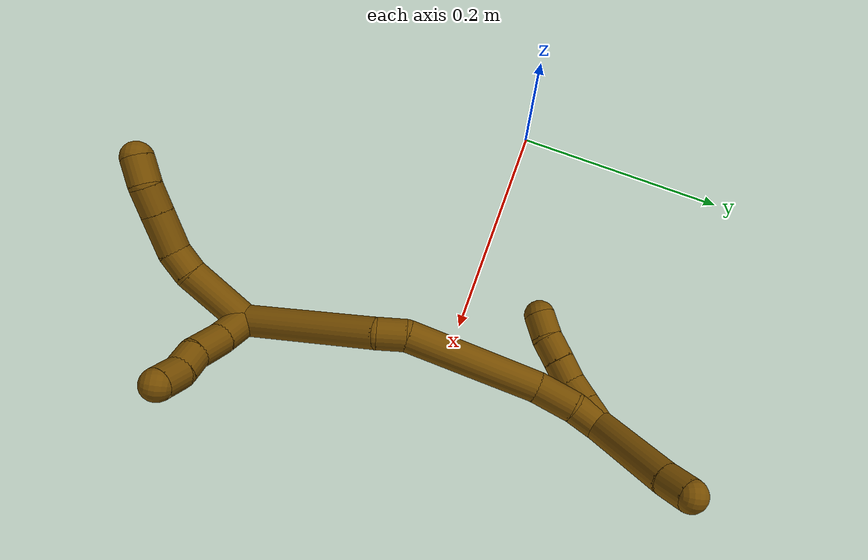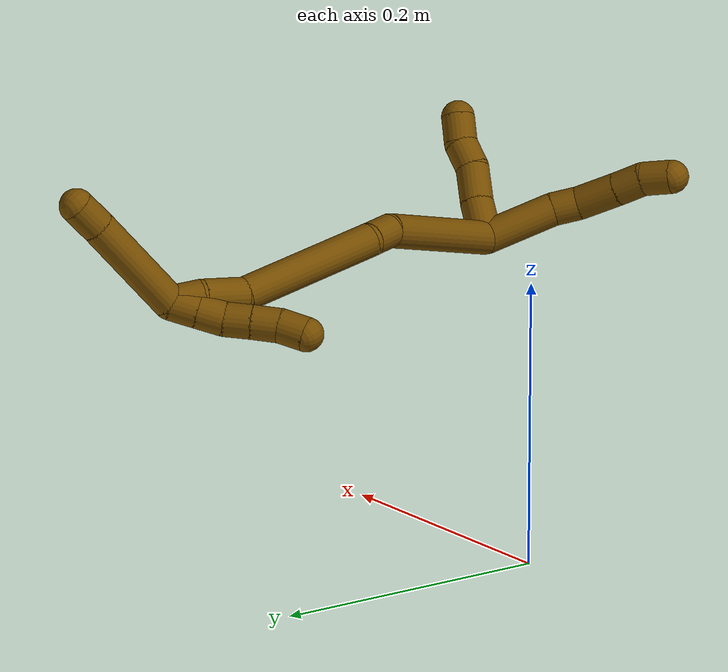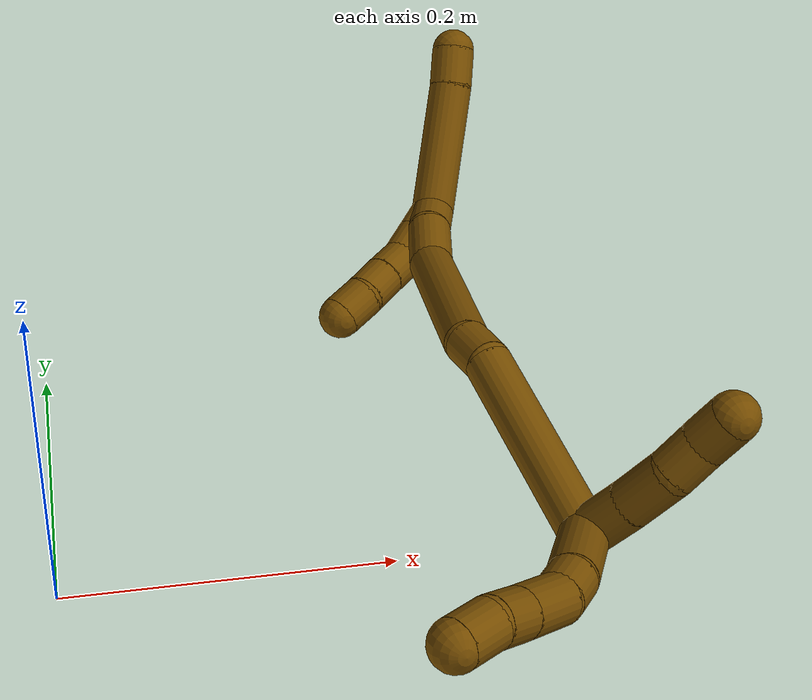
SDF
<sdf version="1.7">
 <world name="default">
  <model name="12">
   <static>0</static>
   <link name="12">
    <collision name="collision-cylinder-e_1_2_8">
     <pose>-0.013177 0.006614 0.022867 -0.281538 -0.505556 0.073174</pose>
     <geometry><cylinder><radius>0.0125</radius><length>0.054416</length></cylinder></geometry>
     <surface>
      <friction><ode><mu>1.16</mu><mu2>1.16</mu2><slip1>0</slip1><slip2>0</slip2></ode></friction>
      <contact><ode><kp>1e+06</kp><kd>1</kd><max_vel>0</max_vel><min_depth>0.001</min_depth></ode></contact>
     </surface>
    </collision>
    <visual name="visual-cylinder-e_1_2_8">
     <pose>-0.013177 0.006614 0.022867 -0.281538 -0.505556 0.073174</pose>
     <geometry><cylinder><radius>0.0125</radius><length>0.054416</length></cylinder></geometry>
     <material><ambient>0.466667 0.301961 0 1</ambient></material>
    </visual>
    <collision name="collision-cylinder-e_2_8_9">
     <pose>-0.03306 0.01535 0.052875 -0.288919 -0.732949 0.111553</pose>
     <geometry><cylinder><radius>0.0125</radius><length>0.020046</length></cylinder></geometry>
     <surface>
      <friction><ode><mu>1.16</mu><mu2>1.16</mu2><slip1>0</slip1><slip2>0</slip2></ode></friction>
      <contact><ode><kp>1e+06</kp><kd>1</kd><max_vel>0</max_vel><min_depth>0.001</min_depth></ode></contact>
     </surface>
    </collision>
    <visual name="visual-cylinder-e_2_8_9">
     <pose>-0.03306 0.01535 0.052875 -0.288919 -0.732949 0.111553</pose>
     <geometry><cylinder><radius>0.0125</radius><length>0.020046</length></cylinder></geometry>
     <material><ambient>0.466667 0.301961 0 1</ambient></material>
    </visual>
    <collision name="collision-cylinder-e_3_9_10">
     <pose>-0.051246 0.024985 0.068278 -0.737966 -0.799222 0.32377</pose>
     <geometry><cylinder><radius>0.0125</radius><length>0.032031</length></cylinder></geometry>
     <surface>
      <friction><ode><mu>1.16</mu><mu2>1.16</mu2><slip1>0</slip1><slip2>0</slip2></ode></friction>
      <contact><ode><kp>1e+06</kp><kd>1</kd><max_vel>0</max_vel><min_depth>0.001</min_depth></ode></contact>
     </surface>
    </collision>
    <visual name="visual-cylinder-e_3_9_10">
     <pose>-0.051246 0.024985 0.068278 -0.737966 -0.799222 0.32377</pose>
     <geometry><cylinder><radius>0.0125</radius><length>0.032031</length></cylinder></geometry>
     <material><ambient>0.466667 0.301961 0 1</ambient></material>
    </visual>
    <collision name="collision-cylinder-e_4_10_11">
     <pose>-0.07028 0.03781 0.082014 -0.770266 -0.780524 0.330472</pose>
     <geometry><cylinder><radius>0.0125</radius><length>0.021471</length></cylinder></geometry>
     <surface>
      <friction><ode><mu>1.16</mu><mu2>1.16</mu2><slip1>0</slip1><slip2>0</slip2></ode></friction>
      <contact><ode><kp>1e+06</kp><kd>1</kd><max_vel>0</max_vel><min_depth>0.001</min_depth></ode></contact>
     </surface>
    </collision>
    <visual name="visual-cylinder-e_4_10_11">
     <pose>-0.07028 0.03781 0.082014 -0.770266 -0.780524 0.330472</pose>
     <geometry><cylinder><radius>0.0125</radius><length>0.021471</length></cylinder></geometry>
     <material><ambient>0.466667 0.301961 0 1</ambient></material>
    </visual>
    <collision name="collision-cylinder-e_5_11_6">
     <pose>-0.087324 0.046055 0.092257 -0.551653 -1.03786 0.320539</pose>
     <geometry><cylinder><radius>0.0125</radius><length>0.022035</length></cylinder></geometry>
     <surface>
      <friction><ode><mu>1.16</mu><mu2>1.16</mu2><slip1>0</slip1><slip2>0</slip2></ode></friction>
      <contact><ode><kp>1e+06</kp><kd>1</kd><max_vel>0</max_vel><min_depth>0.001</min_depth></ode></contact>
     </surface>
    </collision>
    <visual name="visual-cylinder-e_5_11_6">
     <pose>-0.087324 0.046055 0.092257 -0.551653 -1.03786 0.320539</pose>
     <geometry><cylinder><radius>0.0125</radius><length>0.022035</length></cylinder></geometry>
     <material><ambient>0.466667 0.301961 0 1</ambient></material>
    </visual>
    <collision name="collision-cylinder-e_1_2_12">
     <pose>0.010696 0.006304 0.007695 -0.686321 0.821641 -0.308804</pose>
     <geometry><cylinder><radius>0.0125</radius><length>0.029214</length></cylinder></geometry>
     <surface>
      <friction><ode><mu>1.16</mu><mu2>1.16</mu2><slip1>0</slip1><slip2>0</slip2></ode></friction>
      <contact><ode><kp>1e+06</kp><kd>1</kd><max_vel>0</max_vel><min_depth>0.001</min_depth></ode></contact>
     </surface>
    </collision>
    <visual name="visual-cylinder-e_1_2_12">
     <pose>0.010696 0.006304 0.007695 -0.686321 0.821641 -0.308804</pose>
     <geometry><cylinder><radius>0.0125</radius><length>0.029214</length></cylinder></geometry>
     <material><ambient>0.466667 0.301961 0 1</ambient></material>
    </visual>
    <collision name="collision-cylinder-e_2_12_13">
     <pose>0.03063 0.019871 0.023521 -0.729146 0.702921 -0.278072</pose>
     <geometry><cylinder><radius>0.0125</radius><length>0.028579</length></cylinder></geometry>
     <surface>
      <friction><ode><mu>1.16</mu><mu2>1.16</mu2><slip1>0</slip1><slip2>0</slip2></ode></friction>
      <contact><ode><kp>1e+06</kp><kd>1</kd><max_vel>0</max_vel><min_depth>0.001</min_depth></ode></contact>
     </surface>
    </collision>
    <visual name="visual-cylinder-e_2_12_13">
     <pose>0.03063 0.019871 0.023521 -0.729146 0.702921 -0.278072</pose>
     <geometry><cylinder><radius>0.0125</radius><length>0.028579</length></cylinder></geometry>
     <material><ambient>0.466667 0.301961 0 1</ambient></material>
    </visual>
    <collision name="collision-cylinder-e_3_13_14">
     <pose>0.048318 0.032122 0.035027 -0.975801 0.951646 -0.533893</pose>
     <geometry><cylinder><radius>0.0125</radius><length>0.020754</length></cylinder></geometry>
     <surface>
      <friction><ode><mu>1.16</mu><mu2>1.16</mu2><slip1>0</slip1><slip2>0</slip2></ode></friction>
      <contact><ode><kp>1e+06</kp><kd>1</kd><max_vel>0</max_vel><min_depth>0.001</min_depth></ode></contact>
     </surface>
    </collision>
    <visual name="visual-cylinder-e_3_13_14">
     <pose>0.048318 0.032122 0.035027 -0.975801 0.951646 -0.533893</pose>
     <geometry><cylinder><radius>0.0125</radius><length>0.020754</length></cylinder></geometry>
     <material><ambient>0.466667 0.301961 0 1</ambient></material>
    </visual>
    <collision name="collision-cylinder-e_4_14_5">
     <pose>0.063317 0.043188 0.044337 -0.797403 0.656732 -0.285102</pose>
     <geometry><cylinder><radius>0.0125</radius><length>0.021453</length></cylinder></geometry>
     <surface>
      <friction><ode><mu>1.16</mu><mu2>1.16</mu2><slip1>0</slip1><slip2>0</slip2></ode></friction>
      <contact><ode><kp>1e+06</kp><kd>1</kd><max_vel>0</max_vel><min_depth>0.001</min_depth></ode></contact>
     </surface>
    </collision>
    <visual name="visual-cylinder-e_4_14_5">
     <pose>0.063317 0.043188 0.044337 -0.797403 0.656732 -0.285102</pose>
     <geometry><cylinder><radius>0.0125</radius><length>0.021453</length></cylinder></geometry>
     <material><ambient>0.466667 0.301961 0 1</ambient></material>
    </visual>
    <collision name="collision-cylinder-e_1_2_15">
     <pose>0.006009 0.027851 -0.047508 -2.61136 0.108691 -0.395481</pose>
     <geometry><cylinder><radius>0.0125</radius><length>0.110793</length></cylinder></geometry>
     <surface>
      <friction><ode><mu>1.16</mu><mu2>1.16</mu2><slip1>0</slip1><slip2>0</slip2></ode></friction>
      <contact><ode><kp>1e+06</kp><kd>1</kd><max_vel>0</max_vel><min_depth>0.001</min_depth></ode></contact>
     </surface>
    </collision>
    <visual name="visual-cylinder-e_1_2_15">
     <pose>0.006009 0.027851 -0.047508 -2.61136 0.108691 -0.395481</pose>
     <geometry><cylinder><radius>0.0125</radius><length>0.110793</length></cylinder></geometry>
     <material><ambient>0.466667 0.301961 0 1</ambient></material>
    </visual>
    <collision name="collision-cylinder-e_2_15_16">
     <pose>0.011782 0.05815 -0.106095 -2.92407 -0.020833 0.190224</pose>
     <geometry><cylinder><radius>0.0125</radius><length>0.022697</length></cylinder></geometry>
     <surface>
      <friction><ode><mu>1.16</mu><mu2>1.16</mu2><slip1>0</slip1><slip2>0</slip2></ode></friction>
      <contact><ode><kp>1e+06</kp><kd>1</kd><max_vel>0</max_vel><min_depth>0.001</min_depth></ode></contact>
     </surface>
    </collision>
    <visual name="visual-cylinder-e_2_15_16">
     <pose>0.011782 0.05815 -0.106095 -2.92407 -0.020833 0.190224</pose>
     <geometry><cylinder><radius>0.0125</radius><length>0.022697</length></cylinder></geometry>
     <material><ambient>0.466667 0.301961 0 1</ambient></material>
    </visual>
    <collision name="collision-cylinder-e_3_16_17">
     <pose>0.024218 0.060873 -0.170737 -3.13647 0.23231 -3.09773</pose>
     <geometry><cylinder><radius>0.0125</radius><length>0.110086</length></cylinder></geometry>
     <surface>
      <friction><ode><mu>1.16</mu><mu2>1.16</mu2><slip1>0</slip1><slip2>0</slip2></ode></friction>
      <contact><ode><kp>1e+06</kp><kd>1</kd><max_vel>0</max_vel><min_depth>0.001</min_depth></ode></contact>
     </surface>
    </collision>
    <visual name="visual-cylinder-e_3_16_17">
     <pose>0.024218 0.060873 -0.170737 -3.13647 0.23231 -3.09773</pose>
     <geometry><cylinder><radius>0.0125</radius><length>0.110086</length></cylinder></geometry>
     <material><ambient>0.466667 0.301961 0 1</ambient></material>
    </visual>
    <collision name="collision-cylinder-e_4_17_18">
     <pose>0.043955 0.065078 -0.238639 -2.874 0.443584 -2.06534</pose>
     <geometry><cylinder><radius>0.0125</radius><length>0.032921</length></cylinder></geometry>
     <surface>
      <friction><ode><mu>1.16</mu><mu2>1.16</mu2><slip1>0</slip1><slip2>0</slip2></ode></friction>
      <contact><ode><kp>1e+06</kp><kd>1</kd><max_vel>0</max_vel><min_depth>0.001</min_depth></ode></contact>
     </surface>
    </collision>
    <visual name="visual-cylinder-e_4_17_18">
     <pose>0.043955 0.065078 -0.238639 -2.874 0.443584 -2.06534</pose>
     <geometry><cylinder><radius>0.0125</radius><length>0.032921</length></cylinder></geometry>
     <material><ambient>0.466667 0.301961 0 1</ambient></material>
    </visual>
    <collision name="collision-cylinder-e_5_18_1">
     <pose>0.056739 0.0693 -0.263238 -3.11322 0.50832 -3.03248</pose>
     <geometry><cylinder><radius>0.0125</radius><length>0.023503</length></cylinder></geometry>
     <surface>
      <friction><ode><mu>1.16</mu><mu2>1.16</mu2><slip1>0</slip1><slip2>0</slip2></ode></friction>
      <contact><ode><kp>1e+06</kp><kd>1</kd><max_vel>0</max_vel><min_depth>0.001</min_depth></ode></contact>
     </surface>
    </collision>
    <visual name="visual-cylinder-e_5_18_1">
     <pose>0.056739 0.0693 -0.263238 -3.11322 0.50832 -3.03248</pose>
     <geometry><cylinder><radius>0.0125</radius><length>0.023503</length></cylinder></geometry>
     <material><ambient>0.466667 0.301961 0 1</ambient></material>
    </visual>
    <collision name="collision-cylinder-e_1_1_19">
     <pose>0.0852 0.098587 -0.285075 -1.95061 0.629543 -0.895951</pose>
     <geometry><cylinder><radius>0.0125</radius><length>0.077251</length></cylinder></geometry>
     <surface>
      <friction><ode><mu>1.16</mu><mu2>1.16</mu2><slip1>0</slip1><slip2>0</slip2></ode></friction>
      <contact><ode><kp>1e+06</kp><kd>1</kd><max_vel>0</max_vel><min_depth>0.001</min_depth></ode></contact>
     </surface>
    </collision>
    <visual name="visual-cylinder-e_1_1_19">
     <pose>0.0852 0.098587 -0.285075 -1.95061 0.629543 -0.895951</pose>
     <geometry><cylinder><radius>0.0125</radius><length>0.077251</length></cylinder></geometry>
     <material><ambient>0.466667 0.301961 0 1</ambient></material>
    </visual>
    <collision name="collision-cylinder-e_2_19_4">
     <pose>0.11405 0.136245 -0.300778 -2.01548 0.566906 -0.864728</pose>
     <geometry><cylinder><radius>0.0125</radius><length>0.022749</length></cylinder></geometry>
     <surface>
      <friction><ode><mu>1.16</mu><mu2>1.16</mu2><slip1>0</slip1><slip2>0</slip2></ode></friction>
      <contact><ode><kp>1e+06</kp><kd>1</kd><max_vel>0</max_vel><min_depth>0.001</min_depth></ode></contact>
     </surface>
    </collision>
    <visual name="visual-cylinder-e_2_19_4">
     <pose>0.11405 0.136245 -0.300778 -2.01548 0.566906 -0.864728</pose>
     <geometry><cylinder><radius>0.0125</radius><length>0.022749</length></cylinder></geometry>
     <material><ambient>0.466667 0.301961 0 1</ambient></material>
    </visual>
    <collision name="collision-cylinder-e_1_1_20">
     <pose>0.054182 0.067162 -0.268442 0.447822 -0.974989 -0.24031</pose>
     <geometry><cylinder><radius>0.0125</radius><length>0.02</length></cylinder></geometry>
     <surface>
      <friction><ode><mu>1.16</mu><mu2>1.16</mu2><slip1>0</slip1><slip2>0</slip2></ode></friction>
      <contact><ode><kp>1e+06</kp><kd>1</kd><max_vel>0</max_vel><min_depth>0.001</min_depth></ode></contact>
     </surface>
    </collision>
    <visual name="visual-cylinder-e_1_1_20">
     <pose>0.054182 0.067162 -0.268442 0.447822 -0.974989 -0.24031</pose>
     <geometry><cylinder><radius>0.0125</radius><length>0.02</length></cylinder></geometry>
     <material><ambient>0.466667 0.301961 0 1</ambient></material>
    </visual>
    <collision name="collision-cylinder-e_2_20_21">
     <pose>0.0376 0.062362 -0.258343 0.439414 -0.98003 -0.237115</pose>
     <geometry><cylinder><radius>0.0125</radius><length>0.02</length></cylinder></geometry>
     <surface>
      <friction><ode><mu>1.16</mu><mu2>1.16</mu2><slip1>0</slip1><slip2>0</slip2></ode></friction>
      <contact><ode><kp>1e+06</kp><kd>1</kd><max_vel>0</max_vel><min_depth>0.001</min_depth></ode></contact>
     </surface>
    </collision>
    <visual name="visual-cylinder-e_2_20_21">
     <pose>0.0376 0.062362 -0.258343 0.439414 -0.98003 -0.237115</pose>
     <geometry><cylinder><radius>0.0125</radius><length>0.02</length></cylinder></geometry>
     <material><ambient>0.466667 0.301961 0 1</ambient></material>
    </visual>
    <collision name="collision-cylinder-e_3_21_22">
     <pose>0.020723 0.060067 -0.248152 -0.014447 -1.02973 0.008174</pose>
     <geometry><cylinder><radius>0.0125</radius><length>0.02</length></cylinder></geometry>
     <surface>
      <friction><ode><mu>1.16</mu><mu2>1.16</mu2><slip1>0</slip1><slip2>0</slip2></ode></friction>
      <contact><ode><kp>1e+06</kp><kd>1</kd><max_vel>0</max_vel><min_depth>0.001</min_depth></ode></contact>
     </surface>
    </collision>
    <visual name="visual-cylinder-e_3_21_22">
     <pose>0.020723 0.060067 -0.248152 -0.014447 -1.02973 0.008174</pose>
     <geometry><cylinder><radius>0.0125</radius><length>0.02</length></cylinder></geometry>
     <material><ambient>0.466667 0.301961 0 1</ambient></material>
    </visual>
    <collision name="collision-cylinder-e_4_22_23">
     <pose>0.003577 0.059896 -0.237861 0.047658 -1.0302 -0.026982</pose>
     <geometry><cylinder><radius>0.0125</radius><length>0.02</length></cylinder></geometry>
     <surface>
      <friction><ode><mu>1.16</mu><mu2>1.16</mu2><slip1>0</slip1><slip2>0</slip2></ode></friction>
      <contact><ode><kp>1e+06</kp><kd>1</kd><max_vel>0</max_vel><min_depth>0.001</min_depth></ode></contact>
     </surface>
    </collision>
    <visual name="visual-cylinder-e_4_22_23">
     <pose>0.003577 0.059896 -0.237861 0.047658 -1.0302 -0.026982</pose>
     <geometry><cylinder><radius>0.0125</radius><length>0.02</length></cylinder></geometry>
     <material><ambient>0.466667 0.301961 0 1</ambient></material>
    </visual>
    <collision name="collision-cylinder-e_5_23_3">
     <pose>-0.014423 0.058713 -0.229517 0.28498 -1.23046 -0.202087</pose>
     <geometry><cylinder><radius>0.0125</radius><length>0.02</length></cylinder></geometry>
     <surface>
      <friction><ode><mu>1.16</mu><mu2>1.16</mu2><slip1>0</slip1><slip2>0</slip2></ode></friction>
      <contact><ode><kp>1e+06</kp><kd>1</kd><max_vel>0</max_vel><min_depth>0.001</min_depth></ode></contact>
     </surface>
    </collision>
    <visual name="visual-cylinder-e_5_23_3">
     <pose>-0.014423 0.058713 -0.229517 0.28498 -1.23046 -0.202087</pose>
     <geometry><cylinder><radius>0.0125</radius><length>0.02</length></cylinder></geometry>
     <material><ambient>0.466667 0.301961 0 1</ambient></material>
    </visual>
    <collision name="collision-sphere-3">
     <pose>-0.02385 0.057774 -0.226314 0 -0 0</pose>
     <geometry><sphere><radius>0.0125</radius></sphere></geometry>
     <surface>
      <friction><ode><mu>1.16</mu><mu2>1.16</mu2><slip1>0</slip1><slip2>0</slip2></ode></friction>
      <contact><ode><kp>1e+06</kp><kd>1</kd><max_vel>0</max_vel><min_depth>0.001</min_depth></ode></contact>
     </surface>
    </collision>
    <visual name="visual-sphere-3">
     <pose>-0.02385 0.057774 -0.226314 0 -0 0</pose>
     <geometry><sphere><radius>0.0125</radius></sphere></geometry>
     <material><ambient>0.466667 0.301961 0 1</ambient></material>
    </visual>
    <collision name="collision-sphere-23">
     <pose>-0.004997 0.059651 -0.232721 0 -0 0</pose>
     <geometry><sphere><radius>0.0125</radius></sphere></geometry>
     <surface>
      <friction><ode><mu>1.16</mu><mu2>1.16</mu2><slip1>0</slip1><slip2>0</slip2></ode></friction>
      <contact><ode><kp>1e+06</kp><kd>1</kd><max_vel>0</max_vel><min_depth>0.001</min_depth></ode></contact>
     </surface>
    </collision>
    <visual name="visual-sphere-23">
     <pose>-0.004997 0.059651 -0.232721 0 -0 0</pose>
     <geometry><sphere><radius>0.0125</radius></sphere></geometry>
     <material><ambient>0.466667 0.301961 0 1</ambient></material>
    </visual>
    <collision name="collision-sphere-22">
     <pose>0.012151 0.060141 -0.243002 0 -0 0</pose>
     <geometry><sphere><radius>0.0125</radius></sphere></geometry>
     <surface>
      <friction><ode><mu>1.16</mu><mu2>1.16</mu2><slip1>0</slip1><slip2>0</slip2></ode></friction>
      <contact><ode><kp>1e+06</kp><kd>1</kd><max_vel>0</max_vel><min_depth>0.001</min_depth></ode></contact>
     </surface>
    </collision>
    <visual name="visual-sphere-22">
     <pose>0.012151 0.060141 -0.243002 0 -0 0</pose>
     <geometry><sphere><radius>0.0125</radius></sphere></geometry>
     <material><ambient>0.466667 0.301961 0 1</ambient></material>
    </visual>
    <collision name="collision-sphere-21">
     <pose>0.029294 0.059993 -0.253302 0 -0 0</pose>
     <geometry><sphere><radius>0.0125</radius></sphere></geometry>
     <surface>
      <friction><ode><mu>1.16</mu><mu2>1.16</mu2><slip1>0</slip1><slip2>0</slip2></ode></friction>
      <contact><ode><kp>1e+06</kp><kd>1</kd><max_vel>0</max_vel><min_depth>0.001</min_depth></ode></contact>
     </surface>
    </collision>
    <visual name="visual-sphere-21">
     <pose>0.029294 0.059993 -0.253302 0 -0 0</pose>
     <geometry><sphere><radius>0.0125</radius></sphere></geometry>
     <material><ambient>0.466667 0.301961 0 1</ambient></material>
    </visual>
    <collision name="collision-sphere-20">
     <pose>0.045905 0.064732 -0.263383 0 -0 0</pose>
     <geometry><sphere><radius>0.0125</radius></sphere></geometry>
     <surface>
      <friction><ode><mu>1.16</mu><mu2>1.16</mu2><slip1>0</slip1><slip2>0</slip2></ode></friction>
      <contact><ode><kp>1e+06</kp><kd>1</kd><max_vel>0</max_vel><min_depth>0.001</min_depth></ode></contact>
     </surface>
    </collision>
    <visual name="visual-sphere-20">
     <pose>0.045905 0.064732 -0.263383 0 -0 0</pose>
     <geometry><sphere><radius>0.0125</radius></sphere></geometry>
     <material><ambient>0.466667 0.301961 0 1</ambient></material>
    </visual>
    <collision name="collision-sphere-4">
     <pose>0.120159 0.144907 -0.304906 0 -0 0</pose>
     <geometry><sphere><radius>0.0125</radius></sphere></geometry>
     <surface>
      <friction><ode><mu>1.16</mu><mu2>1.16</mu2><slip1>0</slip1><slip2>0</slip2></ode></friction>
      <contact><ode><kp>1e+06</kp><kd>1</kd><max_vel>0</max_vel><min_depth>0.001</min_depth></ode></contact>
     </surface>
    </collision>
    <visual name="visual-sphere-4">
     <pose>0.120159 0.144907 -0.304906 0 -0 0</pose>
     <geometry><sphere><radius>0.0125</radius></sphere></geometry>
     <material><ambient>0.466667 0.301961 0 1</ambient></material>
    </visual>
    <collision name="collision-sphere-6">
     <pose>-0.096814 0.048989 0.097024 0 -0 0</pose>
     <geometry><sphere><radius>0.0125</radius></sphere></geometry>
     <surface>
      <friction><ode><mu>1.16</mu><mu2>1.16</mu2><slip1>0</slip1><slip2>0</slip2></ode></friction>
      <contact><ode><kp>1e+06</kp><kd>1</kd><max_vel>0</max_vel><min_depth>0.001</min_depth></ode></contact>
     </surface>
    </collision>
    <visual name="visual-sphere-6">
     <pose>-0.096814 0.048989 0.097024 0 -0 0</pose>
     <geometry><sphere><radius>0.0125</radius></sphere></geometry>
     <material><ambient>0.466667 0.301961 0 1</ambient></material>
    </visual>
    <collision name="collision-sphere-11">
     <pose>-0.077834 0.043122 0.087489 0 -0 0</pose>
     <geometry><sphere><radius>0.0125</radius></sphere></geometry>
     <surface>
      <friction><ode><mu>1.16</mu><mu2>1.16</mu2><slip1>0</slip1><slip2>0</slip2></ode></friction>
      <contact><ode><kp>1e+06</kp><kd>1</kd><max_vel>0</max_vel><min_depth>0.001</min_depth></ode></contact>
     </surface>
    </collision>
    <visual name="visual-sphere-11">
     <pose>-0.077834 0.043122 0.087489 0 -0 0</pose>
     <geometry><sphere><radius>0.0125</radius></sphere></geometry>
     <material><ambient>0.466667 0.301961 0 1</ambient></material>
    </visual>
    <collision name="collision-sphere-10">
     <pose>-0.062726 0.032498 0.076539 0 -0 0</pose>
     <geometry><sphere><radius>0.0125</radius></sphere></geometry>
     <surface>
      <friction><ode><mu>1.16</mu><mu2>1.16</mu2><slip1>0</slip1><slip2>0</slip2></ode></friction>
      <contact><ode><kp>1e+06</kp><kd>1</kd><max_vel>0</max_vel><min_depth>0.001</min_depth></ode></contact>
     </surface>
    </collision>
    <visual name="visual-sphere-10">
     <pose>-0.062726 0.032498 0.076539 0 -0 0</pose>
     <geometry><sphere><radius>0.0125</radius></sphere></geometry>
     <material><ambient>0.466667 0.301961 0 1</ambient></material>
    </visual>
    <collision name="collision-sphere-9">
     <pose>-0.039766 0.017472 0.060016 0 -0 0</pose>
     <geometry><sphere><radius>0.0125</radius></sphere></geometry>
     <surface>
      <friction><ode><mu>1.16</mu><mu2>1.16</mu2><slip1>0</slip1><slip2>0</slip2></ode></friction>
      <contact><ode><kp>1e+06</kp><kd>1</kd><max_vel>0</max_vel><min_depth>0.001</min_depth></ode></contact>
     </surface>
    </collision>
    <visual name="visual-sphere-9">
     <pose>-0.039766 0.017472 0.060016 0 -0 0</pose>
     <geometry><sphere><radius>0.0125</radius></sphere></geometry>
     <material><ambient>0.466667 0.301961 0 1</ambient></material>
    </visual>
    <collision name="collision-sphere-2">
     <geometry><sphere><radius>0.0125</radius></sphere></geometry>
     <surface>
      <friction><ode><mu>1.16</mu><mu2>1.16</mu2><slip1>0</slip1><slip2>0</slip2></ode></friction>
      <contact><ode><kp>1e+06</kp><kd>1</kd><max_vel>0</max_vel><min_depth>0.001</min_depth></ode></contact>
     </surface>
    </collision>
    <visual name="visual-sphere-2">
     <geometry><sphere><radius>0.0125</radius></sphere></geometry>
     <material><ambient>0.466667 0.301961 0 1</ambient></material>
    </visual>
    <collision name="collision-sphere-19">
     <pose>0.107942 0.127583 -0.29665 0 -0 0</pose>
     <geometry><sphere><radius>0.0125</radius></sphere></geometry>
     <surface>
      <friction><ode><mu>1.16</mu><mu2>1.16</mu2><slip1>0</slip1><slip2>0</slip2></ode></friction>
      <contact><ode><kp>1e+06</kp><kd>1</kd><max_vel>0</max_vel><min_depth>0.001</min_depth></ode></contact>
     </surface>
    </collision>
    <visual name="visual-sphere-19">
     <pose>0.107942 0.127583 -0.29665 0 -0 0</pose>
     <geometry><sphere><radius>0.0125</radius></sphere></geometry>
     <material><ambient>0.466667 0.301961 0 1</ambient></material>
    </visual>
    <collision name="collision-sphere-8">
     <pose>-0.026353 0.013227 0.045735 0 -0 0</pose>
     <geometry><sphere><radius>0.0125</radius></sphere></geometry>
     <surface>
      <friction><ode><mu>1.16</mu><mu2>1.16</mu2><slip1>0</slip1><slip2>0</slip2></ode></friction>
      <contact><ode><kp>1e+06</kp><kd>1</kd><max_vel>0</max_vel><min_depth>0.001</min_depth></ode></contact>
     </surface>
    </collision>
    <visual name="visual-sphere-8">
     <pose>-0.026353 0.013227 0.045735 0 -0 0</pose>
     <geometry><sphere><radius>0.0125</radius></sphere></geometry>
     <material><ambient>0.466667 0.301961 0 1</ambient></material>
    </visual>
    <collision name="collision-sphere-12">
     <pose>0.021393 0.012608 0.015391 0 -0 0</pose>
     <geometry><sphere><radius>0.0125</radius></sphere></geometry>
     <surface>
      <friction><ode><mu>1.16</mu><mu2>1.16</mu2><slip1>0</slip1><slip2>0</slip2></ode></friction>
      <contact><ode><kp>1e+06</kp><kd>1</kd><max_vel>0</max_vel><min_depth>0.001</min_depth></ode></contact>
     </surface>
    </collision>
    <visual name="visual-sphere-12">
     <pose>0.021393 0.012608 0.015391 0 -0 0</pose>
     <geometry><sphere><radius>0.0125</radius></sphere></geometry>
     <material><ambient>0.466667 0.301961 0 1</ambient></material>
    </visual>
    <collision name="collision-sphere-13">
     <pose>0.039867 0.027135 0.031651 0 -0 0</pose>
     <geometry><sphere><radius>0.0125</radius></sphere></geometry>
     <surface>
      <friction><ode><mu>1.16</mu><mu2>1.16</mu2><slip1>0</slip1><slip2>0</slip2></ode></friction>
      <contact><ode><kp>1e+06</kp><kd>1</kd><max_vel>0</max_vel><min_depth>0.001</min_depth></ode></contact>
     </surface>
    </collision>
    <visual name="visual-sphere-13">
     <pose>0.039867 0.027135 0.031651 0 -0 0</pose>
     <geometry><sphere><radius>0.0125</radius></sphere></geometry>
     <material><ambient>0.466667 0.301961 0 1</ambient></material>
    </visual>
    <collision name="collision-sphere-14">
     <pose>0.056768 0.037109 0.038402 0 -0 0</pose>
     <geometry><sphere><radius>0.0125</radius></sphere></geometry>
     <surface>
      <friction><ode><mu>1.16</mu><mu2>1.16</mu2><slip1>0</slip1><slip2>0</slip2></ode></friction>
      <contact><ode><kp>1e+06</kp><kd>1</kd><max_vel>0</max_vel><min_depth>0.001</min_depth></ode></contact>
     </surface>
    </collision>
    <visual name="visual-sphere-14">
     <pose>0.056768 0.037109 0.038402 0 -0 0</pose>
     <geometry><sphere><radius>0.0125</radius></sphere></geometry>
     <material><ambient>0.466667 0.301961 0 1</ambient></material>
    </visual>
    <collision name="collision-sphere-5">
     <pose>0.069866 0.049267 0.050271 0 -0 0</pose>
     <geometry><sphere><radius>0.0125</radius></sphere></geometry>
     <surface>
      <friction><ode><mu>1.16</mu><mu2>1.16</mu2><slip1>0</slip1><slip2>0</slip2></ode></friction>
      <contact><ode><kp>1e+06</kp><kd>1</kd><max_vel>0</max_vel><min_depth>0.001</min_depth></ode></contact>
     </surface>
    </collision>
    <visual name="visual-sphere-5">
     <pose>0.069866 0.049267 0.050271 0 -0 0</pose>
     <geometry><sphere><radius>0.0125</radius></sphere></geometry>
     <material><ambient>0.466667 0.301961 0 1</ambient></material>
    </visual>
    <collision name="collision-sphere-15">
     <pose>0.012019 0.055702 -0.095016 0 -0 0</pose>
     <geometry><sphere><radius>0.0125</radius></sphere></geometry>
     <surface>
      <friction><ode><mu>1.16</mu><mu2>1.16</mu2><slip1>0</slip1><slip2>0</slip2></ode></friction>
      <contact><ode><kp>1e+06</kp><kd>1</kd><max_vel>0</max_vel><min_depth>0.001</min_depth></ode></contact>
     </surface>
    </collision>
    <visual name="visual-sphere-15">
     <pose>0.012019 0.055702 -0.095016 0 -0 0</pose>
     <geometry><sphere><radius>0.0125</radius></sphere></geometry>
     <material><ambient>0.466667 0.301961 0 1</ambient></material>
    </visual>
    <collision name="collision-sphere-16">
     <pose>0.011546 0.060599 -0.117173 0 -0 0</pose>
     <geometry><sphere><radius>0.0125</radius></sphere></geometry>
     <surface>
      <friction><ode><mu>1.16</mu><mu2>1.16</mu2><slip1>0</slip1><slip2>0</slip2></ode></friction>
      <contact><ode><kp>1e+06</kp><kd>1</kd><max_vel>0</max_vel><min_depth>0.001</min_depth></ode></contact>
     </surface>
    </collision>
    <visual name="visual-sphere-16">
     <pose>0.011546 0.060599 -0.117173 0 -0 0</pose>
     <geometry><sphere><radius>0.0125</radius></sphere></geometry>
     <material><ambient>0.466667 0.301961 0 1</ambient></material>
    </visual>
    <collision name="collision-sphere-17">
     <pose>0.03689 0.061147 -0.2243 0 -0 0</pose>
     <geometry><sphere><radius>0.0125</radius></sphere></geometry>
     <surface>
      <friction><ode><mu>1.16</mu><mu2>1.16</mu2><slip1>0</slip1><slip2>0</slip2></ode></friction>
      <contact><ode><kp>1e+06</kp><kd>1</kd><max_vel>0</max_vel><min_depth>0.001</min_depth></ode></contact>
     </surface>
    </collision>
    <visual name="visual-sphere-17">
     <pose>0.03689 0.061147 -0.2243 0 -0 0</pose>
     <geometry><sphere><radius>0.0125</radius></sphere></geometry>
     <material><ambient>0.466667 0.301961 0 1</ambient></material>
    </visual>
    <collision name="collision-sphere-18">
     <pose>0.051019 0.069009 -0.252977 0 -0 0</pose>
     <geometry><sphere><radius>0.0125</radius></sphere></geometry>
     <surface>
      <friction><ode><mu>1.16</mu><mu2>1.16</mu2><slip1>0</slip1><slip2>0</slip2></ode></friction>
      <contact><ode><kp>1e+06</kp><kd>1</kd><max_vel>0</max_vel><min_depth>0.001</min_depth></ode></contact>
     </surface>
    </collision>
    <visual name="visual-sphere-18">
     <pose>0.051019 0.069009 -0.252977 0 -0 0</pose>
     <geometry><sphere><radius>0.0125</radius></sphere></geometry>
     <material><ambient>0.466667 0.301961 0 1</ambient></material>
    </visual>
    <collision name="collision-sphere-1">
     <pose>0.062459 0.069591 -0.2735 0 -0 0</pose>
     <geometry><sphere><radius>0.0125</radius></sphere></geometry>
     <surface>
      <friction><ode><mu>1.16</mu><mu2>1.16</mu2><slip1>0</slip1><slip2>0</slip2></ode></friction>
      <contact><ode><kp>1e+06</kp><kd>1</kd><max_vel>0</max_vel><min_depth>0.001</min_depth></ode></contact>
     </surface>
    </collision>
    <visual name="visual-sphere-1">
     <pose>0.062459 0.069591 -0.2735 0 -0 0</pose>
     <geometry><sphere><radius>0.0125</radius></sphere></geometry>
     <material><ambient>0.466667 0.301961 0 1</ambient></material>
    </visual>
    <inertial>
     <pose>0.019579 0.049863 -0.111148 0 -0 0</pose>
     <mass>0.75</mass>
     <inertia>
      <ixx>-3.5e-05</ixx>
      <ixy>0</ixy>
      <ixz>0</ixz>
      <iyy>1.1e-05</iyy>
      <iyz>0</iyz>
      <izz>-0.000167</izz>
     </inertia>
    </inertial>
   </link>
   <pose>0.259318 -0.15375 0.157332 1.25228 -0.26603 0.283719</pose>
  </model>
 </world>
</sdf>
